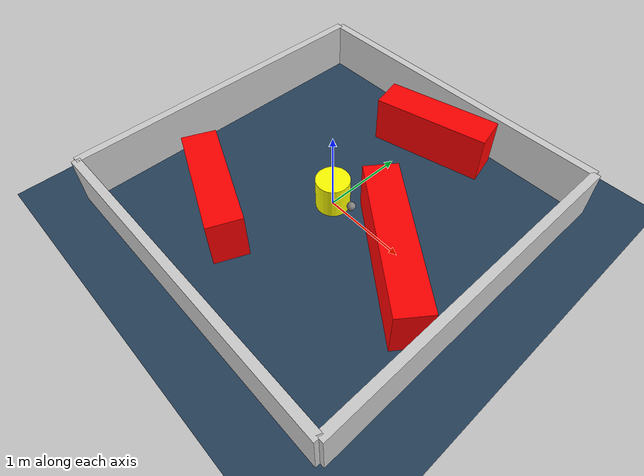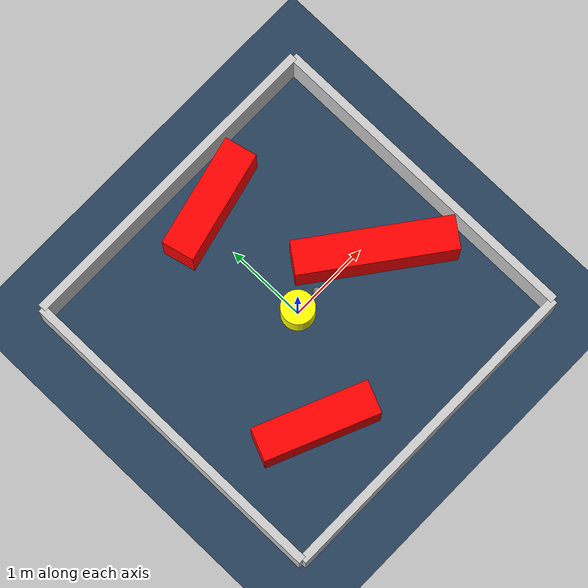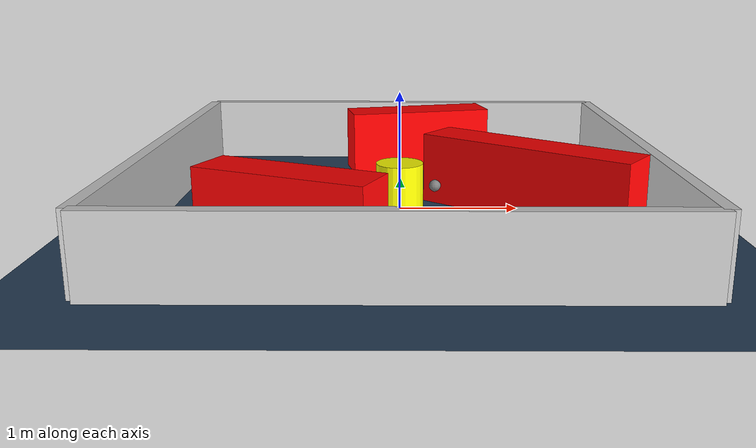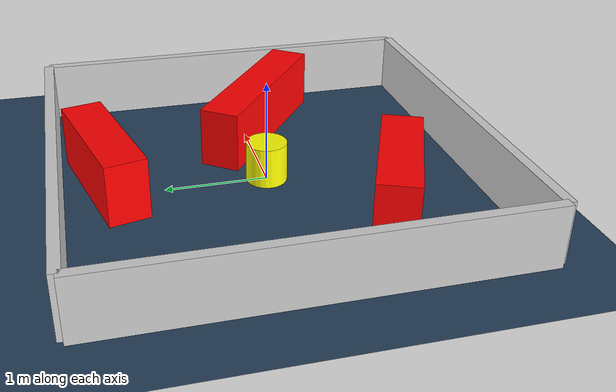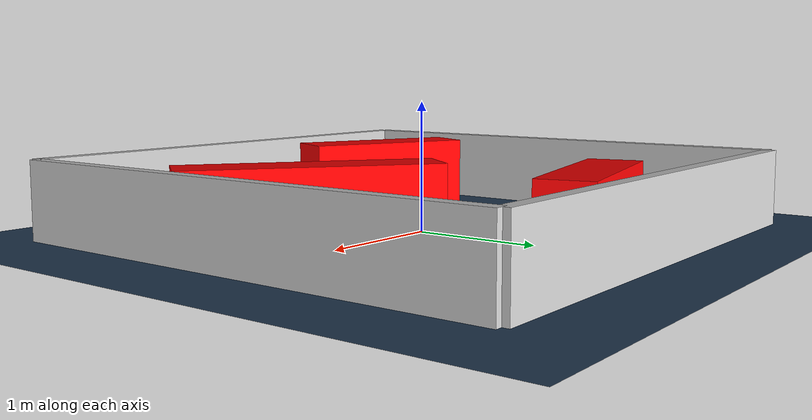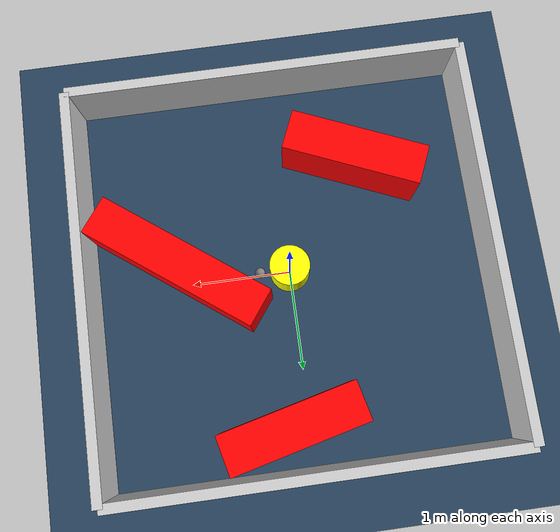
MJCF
<?xml version="1.0" ?>
<mujoco model="generated_environment">
  <option timestep="0.01" integrator="RK4" cone="elliptic"/>
  <default>
    <geom density="1"/>
  </default>
  <asset>
    <texture builtin="gradient" height="3072" rgb1="0.3 0.5 0.7" rgb2="0 0 0" type="skybox" width="512"/>
    <texture builtin="checker" height="300" mark="edge" markrgb="0.8 0.8 0.8" name="groundplane" rgb1="0.2 0.3 0.4" rgb2="0.1 0.2 0.3" type="2d" width="300"/>
    <material name="groundplane" reflectance="0.2" texrepeat="5 5" texture="groundplane" texuniform="true"/>
    <material name="robot" rgba="0.0 1.0 0.0 1"/>
  </asset>
  <worldbody>
    <light dir="0 0 -1" directional="true" pos="0 0 1.5"/>
    <geom condim="4" friction="1.0 0.005 0.001" material="groundplane" name="floor" size="0 0 0.05" type="plane"/>
    <body name="walls">
      <geom name="wall_1" condim="4" pos="-2.0 0.0 0.3" rgba="0.800000011920929 0.800000011920929 0.800000011920929 1.0" size="0.05 2.0 0.3" type="box"/>
      <geom name="wall_2" condim="4" pos="2.0 0.0 0.3" rgba="0.800000011920929 0.800000011920929 0.800000011920929 1.0" size="0.05 2.0 0.3" type="box"/>
      <geom name="wall_3" condim="4" pos="0.0 -2.0 0.3" rgba="0.800000011920929 0.800000011920929 0.800000011920929 1.0" size="2.0 0.05 0.3" type="box"/>
      <geom name="wall_4" condim="4" pos="0.0 2.0 0.3" rgba="0.800000011920929 0.800000011920929 0.800000011920929 1.0" size="2.0 0.05 0.3" type="box"/>
    </body>
    <body name="robot">
      <joint name="joint_x" type="slide" pos="0 0 0" axis="1 0 0"/>
      <joint name="joint_y" type="slide" pos="0 0 0" axis="0 1 0"/>
      <geom name="robot" type="sphere" pos="0.3 0.0 0.2" size="0.05" mass="5." friction="1.0 0.005 0.0001" condim="4" rgba="0.5 0.5 0.5 1.0"/>
      <site name="sensor_ball"/>
    </body>
    <body name="obstacle_movable_1">
      <geom name="obstacle_movable_1" condim="4" pos="0.0 0.0 0.2" euler="0 0 0.0" friction="1.0 0.005 0.001" rgba="1.0 1.0 0.0 1.0" size="0.2 0.2 0.0" type="cylinder" mass="0.1"/>
      <joint type="free"/>
    </body>
    <body name="obstacle_2_static">
      <geom name="obstacle_2_static" condim="4" pos="1.07491335670167 -0.1544349967470675 0.3" euler="0 0 323.2123752021141" friction="1.0 0.005 0.001" rgba="1 0 0 1" size="0.9320040575156989 0.2 0.3" type="box"/>
    </body>
    <body name="obstacle_3_static">
      <geom name="obstacle_3_static" condim="4" pos="-0.795523623126526 -1.0470441458674937 0.3" euler="0 0 336.73616986025587" friction="1.0 0.005 0.001" rgba="1 0 0 1" size="0.6977030706359241 0.2 0.3" type="box"/>
    </body>
    <body name="obstacle_4_static">
      <geom name="obstacle_4_static" condim="4" pos="0.17152040995585383 1.5381684057599123 0.3" euler="0 0 13.598710673536413" friction="1.0 0.005 0.001" rgba="1 0 0 1" size="0.6935465764863276 0.2 0.3" type="box"/>
    </body>
  </worldbody>
  <actuator>
    <motor name="actuator_x" joint="joint_x" gear="1" ctrlrange="-1 1"/>
    <motor name="actuator_y" joint="joint_y" gear="1" ctrlrange="-1 1"/>
  </actuator>
</mujoco>
